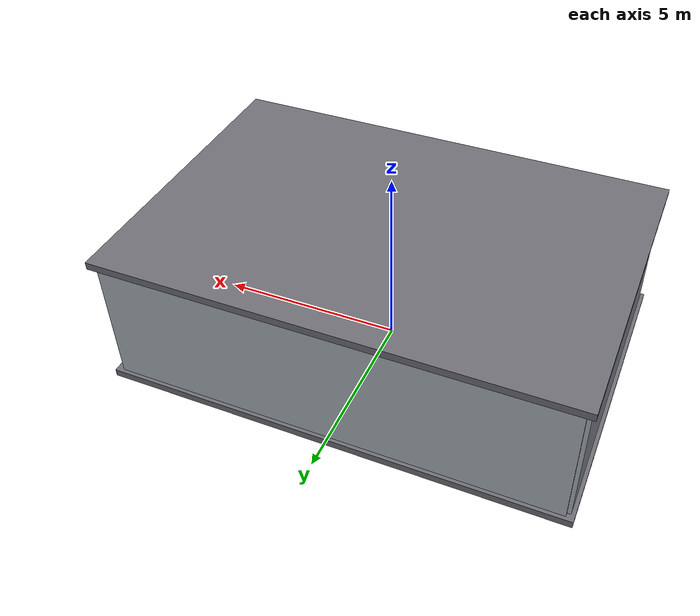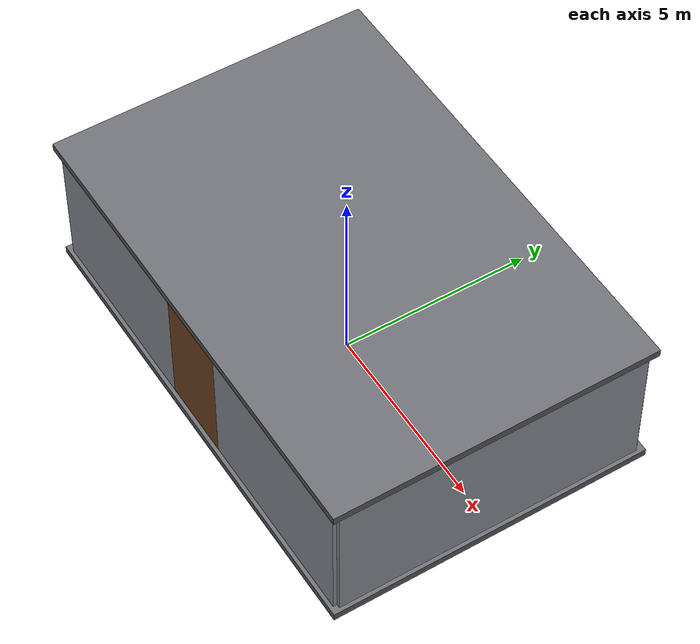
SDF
<?xml version="1.0"?>
<sdf version="1.9">
  <world name="indoor_room">
    <gravity>0 0 -9.81</gravity>
    <magnetic_field>6e-06 2.3e-05 -4.2e-05</magnetic_field>
    <atmosphere type="adiabatic"/>

    <physics name="physics" type="ode">
      <max_step_size>0.004</max_step_size>
      <real_time_factor>1.0</real_time_factor>
      <real_time_update_rate>250</real_time_update_rate>
    </physics>

    <scene>
      <ambient>0.45 0.45 0.45 1</ambient>
      <background>0.08 0.08 0.12 1</background>
      <shadows>true</shadows>
      <grid>false</grid>
    </scene>

    <spherical_coordinates>
      <surface_model>EARTH_WGS84</surface_model>
      <world_frame_orientation>ENU</world_frame_orientation>
      <latitude_deg>47.397971057728974</latitude_deg>
      <longitude_deg>8.546163739800146</longitude_deg>
      <elevation>0</elevation>
    </spherical_coordinates>

    <plugin filename="gz-sim-physics-system" name="gz::sim::systems::Physics"/>
    <plugin filename="gz-sim-user-commands-system" name="gz::sim::systems::UserCommands"/>
    <plugin filename="gz-sim-scene-broadcaster-system" name="gz::sim::systems::SceneBroadcaster"/>
    <plugin filename="gz-sim-imu-system" name="gz::sim::systems::Imu"/>
    <plugin filename="gz-sim-air-pressure-system" name="gz::sim::systems::AirPressure"/>
    <plugin filename="gz-sim-air-speed-system" name="gz::sim::systems::AirSpeed"/>
    <plugin filename="gz-sim-navsat-system" name="gz::sim::systems::NavSat"/>
    <plugin filename="gz-sim-magnetometer-system" name="gz::sim::systems::Magnetometer"/>
    <plugin filename="gz-sim-sensors-system" name="gz::sim::systems::Sensors">
      <render_engine>ogre2</render_engine>
    </plugin>

    <light name="sun" type="directional">
      <pose>0 0 8 0.4 -0.5 0.3</pose>
      <cast_shadows>true</cast_shadows>
      <intensity>1.0</intensity>
      <direction>-0.3 0.2 -1.0</direction>
    </light>

    <model name="floor">
      <static>true</static>
      <link name="link">
        <collision name="collision">
          <geometry><box><size>12.4 8.4 0.2</size></box></geometry>
        </collision>
        <visual name="visual">
          <geometry><box><size>12.4 8.4 0.2</size></box></geometry>
          <material><ambient>0.28 0.28 0.30 1</ambient><diffuse>0.42 0.42 0.45 1</diffuse></material>
        </visual>
      </link>
      <pose>0 0 -0.1 0 0 0</pose>
    </model>

    <model name="ceiling">
      <static>true</static>
      <link name="link">
        <collision name="collision">
          <geometry><box><size>12.4 8.4 0.2</size></box></geometry>
        </collision>
        <visual name="visual">
          <geometry><box><size>12.4 8.4 0.2</size></box></geometry>
          <material><ambient>0.28 0.28 0.30 1</ambient><diffuse>0.42 0.42 0.45 1</diffuse></material>
        </visual>
      </link>
      <pose>0 0 3.6 0 0 0</pose>
    </model>

    <model name="back_wall">
      <static>true</static>
      <link name="link">
        <collision name="collision"><geometry><box><size>12 0.2 3.5</size></box></geometry></collision>
        <visual name="visual"><geometry><box><size>12 0.2 3.5</size></box></geometry><material><ambient>0.55 0.58 0.62 1</ambient><diffuse>0.65 0.68 0.72 1</diffuse></material></visual>
      </link>
      <pose>0 4 1.75 0 0 0</pose>
    </model>

    <model name="left_wall">
      <static>true</static>
      <link name="link">
        <collision name="collision"><geometry><box><size>0.2 8 3.5</size></box></geometry></collision>
        <visual name="visual"><geometry><box><size>0.2 8 3.5</size></box></geometry><material><ambient>0.55 0.58 0.62 1</ambient><diffuse>0.65 0.68 0.72 1</diffuse></material></visual>
      </link>
      <pose>-6 0 1.75 0 0 0</pose>
    </model>

    <model name="right_wall">
      <static>true</static>
      <link name="link">
        <collision name="collision"><geometry><box><size>0.2 8 3.5</size></box></geometry></collision>
        <visual name="visual"><geometry><box><size>0.2 8 3.5</size></box></geometry><material><ambient>0.55 0.58 0.62 1</ambient><diffuse>0.65 0.68 0.72 1</diffuse></material></visual>
      </link>
      <pose>6 0 1.75 0 0 0</pose>
    </model>

    <model name="front_wall_left">
      <static>true</static>
      <link name="link">
        <collision name="collision"><geometry><box><size>5 0.2 3.5</size></box></geometry></collision>
        <visual name="visual"><geometry><box><size>5 0.2 3.5</size></box></geometry><material><ambient>0.55 0.58 0.62 1</ambient><diffuse>0.65 0.68 0.72 1</diffuse></material></visual>
      </link>
      <pose>-3.5 -4 1.75 0 0 0</pose>
    </model>

    <model name="front_wall_right">
      <static>true</static>
      <link name="link">
        <collision name="collision"><geometry><box><size>5 0.2 3.5</size></box></geometry></collision>
        <visual name="visual"><geometry><box><size>5 0.2 3.5</size></box></geometry><material><ambient>0.55 0.58 0.62 1</ambient><diffuse>0.65 0.68 0.72 1</diffuse></material></visual>
      </link>
      <pose>3.5 -4 1.75 0 0 0</pose>
    </model>

    <model name="front_door">
      <static>true</static>
      <link name="link">
        <collision name="collision">
          <geometry><box><size>2.0 0.2 3.5</size></box></geometry>
        </collision>
        <visual name="door_panel">
          <geometry><box><size>2.0 0.2 3.5</size></box></geometry>
          <material><ambient>0.42 0.26 0.14 1</ambient><diffuse>0.55 0.34 0.18 1</diffuse></material>
        </visual>
        <visual name="door_handle">
          <pose>0.7 0.14 -0.75 0 0 0</pose>
          <geometry><box><size>0.08 0.06 0.18</size></box></geometry>
          <material><ambient>0.70 0.70 0.72 1</ambient><diffuse>0.85 0.85 0.88 1</diffuse></material>
        </visual>
      </link>
      <pose>0 -4 1.75 0 0 0</pose>
    </model>

    <model name="box_obstacle_a">
      <static>true</static>
      <link name="link">
        <collision name="collision"><geometry><box><size>1.4 1.2 1.2</size></box></geometry></collision>
        <visual name="visual"><geometry><box><size>1.4 1.2 1.2</size></box></geometry><material><ambient>0.75 0.32 0.12 1</ambient><diffuse>0.9 0.42 0.16 1</diffuse></material></visual>
      </link>
      <pose>2.4 1.0 0.6 0 0 0</pose>
    </model>

    <model name="box_obstacle_b">
      <static>true</static>
      <link name="link">
        <collision name="collision"><geometry><box><size>1.0 1.8 2.0</size></box></geometry></collision>
        <visual name="visual"><geometry><box><size>1.0 1.8 2.0</size></box></geometry><material><ambient>0.12 0.42 0.75 1</ambient><diffuse>0.16 0.52 0.9 1</diffuse></material></visual>
      </link>
      <pose>-2.8 1.8 1.0 0 0 0</pose>
    </model>

    <model name="column_obstacle">
      <static>true</static>
      <link name="link">
        <collision name="collision"><geometry><cylinder><radius>0.45</radius><length>3.0</length></cylinder></geometry></collision>
        <visual name="visual"><geometry><cylinder><radius>0.45</radius><length>3.0</length></cylinder></geometry><material><ambient>0.65 0.65 0.18 1</ambient><diffuse>0.82 0.82 0.24 1</diffuse></material></visual>
      </link>
      <pose>0.0 2.7 1.5 0 0 0</pose>
    </model>
  </world>
</sdf>
